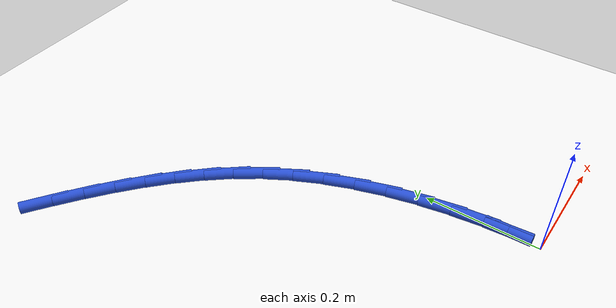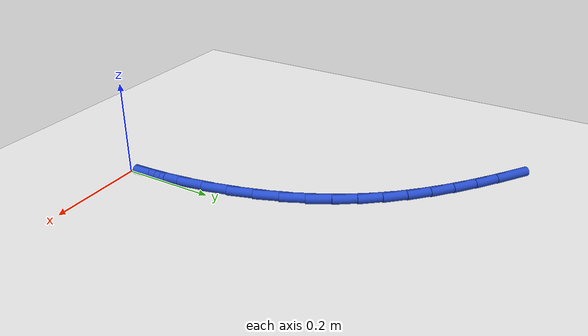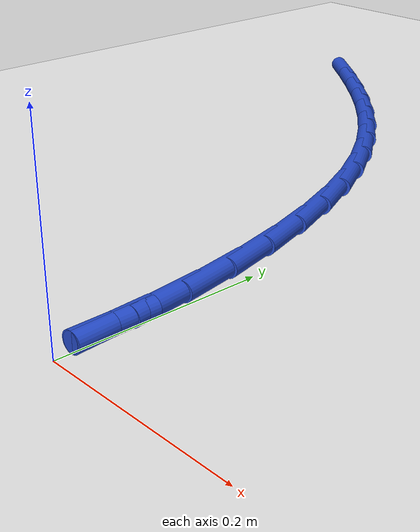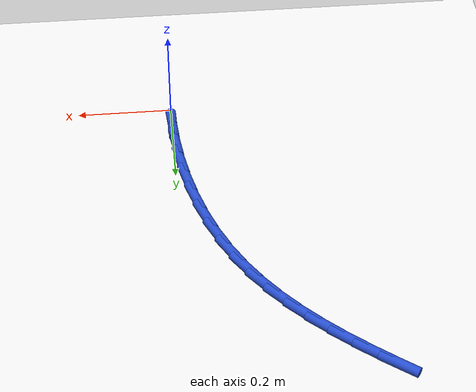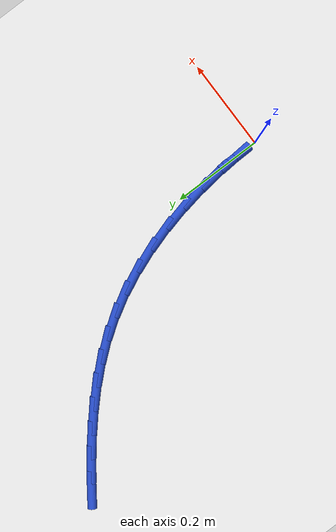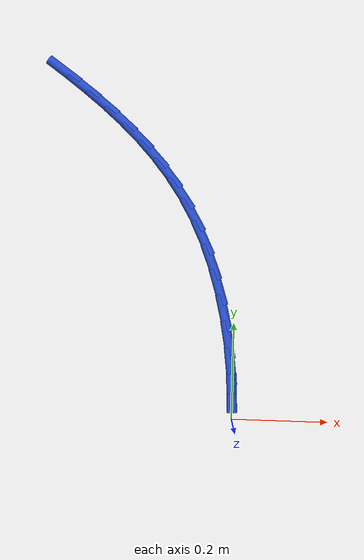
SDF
<sdf version="1.6">
 <world name="default">
  <model name="ground_plane">
   <static>1</static>
   <link name="link">
    <collision name="collision">
     <geometry><plane><normal>0 0 1</normal><size>100 100</size></plane></geometry>
     <surface><friction><ode><mu>100</mu><mu2>50</mu2></ode></friction></surface>
    </collision>
    <visual name="visual">
     <cast_shadows>0</cast_shadows>
     <geometry><plane><normal>0 0 1</normal><size>100 100</size></plane></geometry>
     <material>
      <script><uri>file://media/materials/scripts/gazebo.material</uri><name>Gazebo/WhiteGlow</name></script>
     </material>
    </visual>
   </link>
  </model>
  <model name="line">
   <link name="link_1">
    <pose>-0.0011329032678116374 0.05549217963258938 0.01 0 1.57 -1.4979796829378895</pose>
    <collision name="collision">
     <geometry><cylinder><radius>0.01</radius><length>0.08</length></cylinder></geometry>
    </collision>
    <visual name="visual">
     <material>
      <script><name>Gazebo/Blue</name><uri>file://media/materials/scripts/gazebo.material</uri></script>
     </material>
     <geometry><cylinder><radius>0.01</radius><length>0.08</length></cylinder></geometry>
    </visual>
   </link>
   <link name="link_2">
    <pose>-0.005194142887330147 0.11116707681520731 0.01 0 1.57 -1.4445548681406772</pose>
    <collision name="collision">
     <geometry><cylinder><radius>0.01</radius><length>0.08</length></cylinder></geometry>
    </collision>
    <visual name="visual">
     <material>
      <script><name>Gazebo/Blue</name><uri>file://media/materials/scripts/gazebo.material</uri></script>
     </material>
     <geometry><cylinder><radius>0.01</radius><length>0.08</length></cylinder></geometry>
    </visual>
   </link>
   <link name="link_3">
    <pose>-0.012225290778290552 0.1665669164549131 0.01 0 1.57 -1.3891165430512056</pose>
    <collision name="collision">
     <geometry><cylinder><radius>0.01</radius><length>0.08</length></cylinder></geometry>
    </collision>
    <visual name="visual">
     <material>
      <script><name>Gazebo/Blue</name><uri>file://media/materials/scripts/gazebo.material</uri></script>
     </material>
     <geometry><cylinder><radius>0.01</radius><length>0.08</length></cylinder></geometry>
    </visual>
   </link>
   <link name="link_4">
    <pose>-0.02226791886042784 0.22123392345876614 0.01 0 1.57 -1.3306355662528466</pose>
    <collision name="collision">
     <geometry><cylinder><radius>0.01</radius><length>0.08</length></cylinder></geometry>
    </collision>
    <visual name="visual">
     <material>
      <script><name>Gazebo/Blue</name><uri>file://media/materials/scripts/gazebo.material</uri></script>
     </material>
     <geometry><cylinder><radius>0.01</radius><length>0.08</length></cylinder></geometry>
    </visual>
   </link>
   <link name="link_5">
    <pose>-0.03536359905347698 0.27471032273382595 0.01 0 1.57 -1.2680160669781582</pose>
    <collision name="collision">
     <geometry><cylinder><radius>0.01</radius><length>0.08</length></cylinder></geometry>
    </collision>
    <visual name="visual">
     <material>
      <script><name>Gazebo/Blue</name><uri>file://media/materials/scripts/gazebo.material</uri></script>
     </material>
     <geometry><cylinder><radius>0.01</radius><length>0.08</length></cylinder></geometry>
    </visual>
   </link>
   <link name="link_6">
    <pose>-0.05155390327717296 0.32653833918715197 0.01 0 1.57 -1.2000758719438602</pose>
    <collision name="collision">
     <geometry><cylinder><radius>0.01</radius><length>0.08</length></cylinder></geometry>
    </collision>
    <visual name="visual">
     <material>
      <script><name>Gazebo/Blue</name><uri>file://media/materials/scripts/gazebo.material</uri></script>
     </material>
     <geometry><cylinder><radius>0.01</radius><length>0.08</length></cylinder></geometry>
    </visual>
   </link>
   <link name="link_7">
    <pose>-0.07088040345125075 0.37626019772580344 0.01 0 1.57 -1.1255457795786277</pose>
    <collision name="collision">
     <geometry><cylinder><radius>0.01</radius><length>0.08</length></cylinder></geometry>
    </collision>
    <visual name="visual">
     <material>
      <script><name>Gazebo/Blue</name><uri>file://media/materials/scripts/gazebo.material</uri></script>
     </material>
     <geometry><cylinder><radius>0.01</radius><length>0.08</length></cylinder></geometry>
    </visual>
   </link>
   <link name="link_8">
    <pose>-0.09338467149544535 0.4234181232568401 0.01 0 1.57 -1.044061323672254</pose>
    <collision name="collision">
     <geometry><cylinder><radius>0.01</radius><length>0.08</length></cylinder></geometry>
    </collision>
    <visual name="visual">
     <material>
      <script><name>Gazebo/Blue</name><uri>file://media/materials/scripts/gazebo.material</uri></script>
     </material>
     <geometry><cylinder><radius>0.01</radius><length>0.08</length></cylinder></geometry>
    </visual>
   </link>
   <link name="link_9">
    <pose>-0.11908711650836779 0.46761537002746734 0.01 0 1.57 -0.9631357885905049</pose>
    <collision name="collision">
     <geometry><cylinder><radius>0.01</radius><length>0.08</length></cylinder></geometry>
    </collision>
    <visual name="visual">
     <material>
      <script><name>Gazebo/Blue</name><uri>file://media/materials/scripts/gazebo.material</uri></script>
     </material>
     <geometry><cylinder><radius>0.01</radius><length>0.08</length></cylinder></geometry>
    </visual>
   </link>
   <link name="link_10">
    <pose>-0.147835367976142 0.5089534541035359 0.01 0 1.57 -0.8882764612524884</pose>
    <collision name="collision">
     <geometry><cylinder><radius>0.01</radius><length>0.08</length></cylinder></geometry>
    </collision>
    <visual name="visual">
     <material>
      <script><name>Gazebo/Blue</name><uri>file://media/materials/scripts/gazebo.material</uri></script>
     </material>
     <geometry><cylinder><radius>0.01</radius><length>0.08</length></cylinder></geometry>
    </visual>
   </link>
   <link name="link_11">
    <pose>-0.17939270947056035 0.5477771282850519 0.01 0 1.57 -0.8210759511633126</pose>
    <collision name="collision">
     <geometry><cylinder><radius>0.01</radius><length>0.08</length></cylinder></geometry>
    </collision>
    <visual name="visual">
     <material>
      <script><name>Gazebo/Blue</name><uri>file://media/materials/scripts/gazebo.material</uri></script>
     </material>
     <geometry><cylinder><radius>0.01</radius><length>0.08</length></cylinder></geometry>
    </visual>
   </link>
   <link name="link_12">
    <pose>-0.2135218541390313 0.5844327903617667 0.01 0 1.57 -0.7625456823559136</pose>
    <collision name="collision">
     <geometry><cylinder><radius>0.01</radius><length>0.08</length></cylinder></geometry>
    </collision>
    <visual name="visual">
     <material>
      <script><name>Gazebo/Blue</name><uri>file://media/materials/scripts/gazebo.material</uri></script>
     </material>
     <geometry><cylinder><radius>0.01</radius><length>0.08</length></cylinder></geometry>
    </visual>
   </link>
   <link name="link_13">
    <pose>-0.2499855151289634 0.6192668381234329 0.01 0 1.57 -0.7131924407427168</pose>
    <collision name="collision">
     <geometry><cylinder><radius>0.01</radius><length>0.08</length></cylinder></geometry>
    </collision>
    <visual name="visual">
     <material>
      <script><name>Gazebo/Blue</name><uri>file://media/materials/scripts/gazebo.material</uri></script>
     </material>
     <geometry><cylinder><radius>0.01</radius><length>0.08</length></cylinder></geometry>
    </visual>
   </link>
   <link name="link_14">
    <pose>-0.288546405587765 0.6526256693598027 0.01 0 1.57 -0.6731299744752797</pose>
    <collision name="collision">
     <geometry><cylinder><radius>0.01</radius><length>0.08</length></cylinder></geometry>
    </collision>
    <visual name="visual">
     <material>
      <script><name>Gazebo/Blue</name><uri>file://media/materials/scripts/gazebo.material</uri></script>
     </material>
     <geometry><cylinder><radius>0.01</radius><length>0.08</length></cylinder></geometry>
    </visual>
   </link>
   <link name="link_15">
    <pose>-0.3289672386628448 0.6848556818606286 0.01 0 1.57 -0.6422055719112713</pose>
    <collision name="collision">
     <geometry><cylinder><radius>0.01</radius><length>0.08</length></cylinder></geometry>
    </collision>
    <visual name="visual">
     <material>
      <script><name>Gazebo/Blue</name><uri>file://media/materials/scripts/gazebo.material</uri></script>
     </material>
     <geometry><cylinder><radius>0.01</radius><length>0.08</length></cylinder></geometry>
    </visual>
   </link>
   <link name="link_16">
    <pose>-0.3710107275016111 0.7163032734156626 0.01 0 1.57 -0.6201115737771121</pose>
    <collision name="collision">
     <geometry><cylinder><radius>0.01</radius><length>0.08</length></cylinder></geometry>
    </collision>
    <visual name="visual">
     <material>
      <script><name>Gazebo/Blue</name><uri>file://media/materials/scripts/gazebo.material</uri></script>
     </material>
     <geometry><cylinder><radius>0.01</radius><length>0.08</length></cylinder></geometry>
    </visual>
   </link>
   <link name="link_141">
    <pose>-0.0011284167704402707 0.055569997447867045 0.01 0 1.57 -1.5504928939628135</pose>
    <collision name="collision">
     <geometry><cylinder><radius>0.01</radius><length>0.08</length></cylinder></geometry>
    </collision>
    <visual name="visual">
     <material>
      <script><name>Gazebo/Blue</name><uri>file://media/materials/scripts/gazebo.material</uri></script>
     </material>
     <geometry><cylinder><radius>0.01</radius><length>0.08</length></cylinder></geometry>
    </visual>
   </link>
  </model>
 </world>
</sdf>
